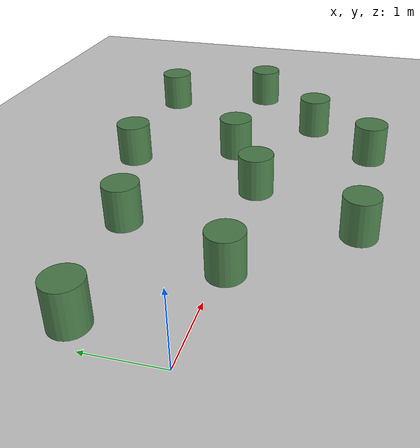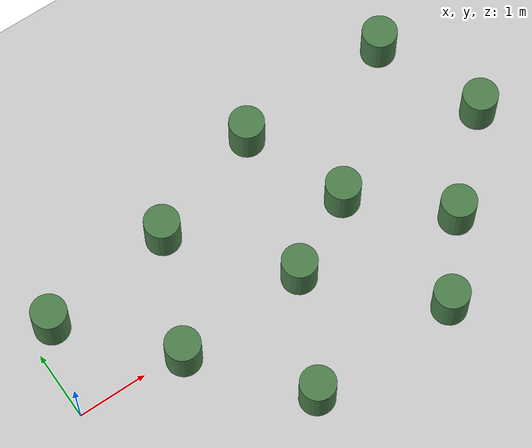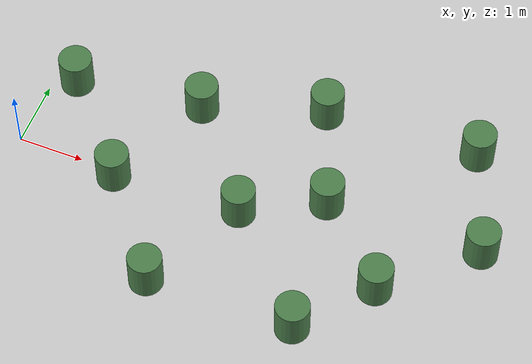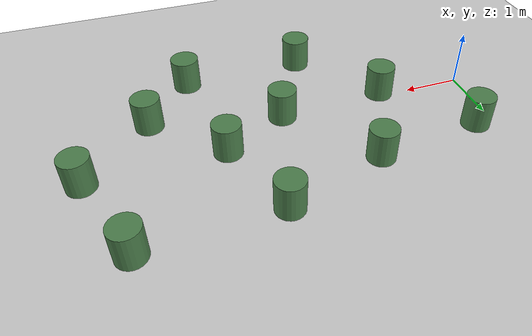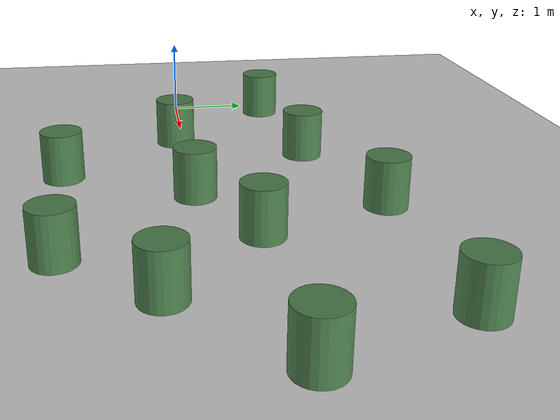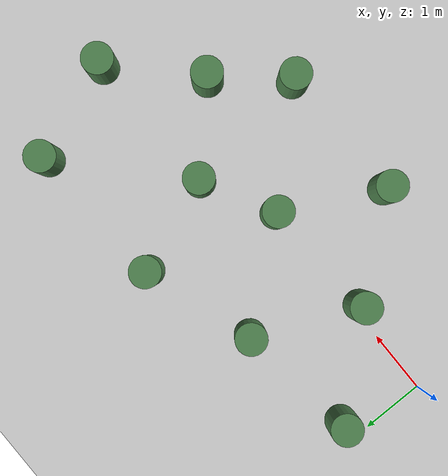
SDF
<sdf version="1.7">
 <world name="default">
  <light name="sun" type="directional">
   <pose>0 0 10 0 -0 0</pose>
   <diffuse>0.8 0.8 0.8 1</diffuse>
   <specular>0.2 0.2 0.2 1</specular>
   <attenuation>
    <range>1000</range>
    <constant>0.9</constant>
    <linear>0.01</linear>
    <quadratic>0.001</quadratic>
   </attenuation>
   <direction>-0.5 0.1 -0.9</direction>
   <spot><inner_angle>0</inner_angle><outer_angle>0</outer_angle><falloff>0</falloff></spot>
  </light>
  <model name="ground_plane">
   <static>1</static>
   <link name="link">
    <collision name="collision">
     <geometry><plane><normal>0 0 1</normal><size>100 100</size></plane></geometry>
     <surface><friction><ode><mu>100</mu><mu2>50</mu2></ode></friction></surface>
    </collision>
    <visual name="visual">
     <cast_shadows>0</cast_shadows>
     <geometry><plane><normal>0 0 1</normal><size>100 100</size></plane></geometry>
     <material>
      <script><uri>file://media/materials/scripts/gazebo.material</uri><name>Gazebo/Grey</name></script>
     </material>
    </visual>
   </link>
  </model>
  <gravity>0 0 -9.8</gravity>
  <magnetic_field>6e-06 2.3e-05 -4.2e-05</magnetic_field>
  <atmosphere type="adiabatic"/>
  <physics type="ode">
   <max_step_size>0.001</max_step_size>
   <real_time_factor>1</real_time_factor>
   <real_time_update_rate>1000</real_time_update_rate>
  </physics>
  <scene><ambient>0.4 0.4 0.4 1</ambient><background>0.7 0.7 0.7 1</background><shadows>1</shadows></scene>
  <spherical_coordinates>
   <surface_model>EARTH_WGS84</surface_model>
   <latitude_deg>0</latitude_deg>
   <longitude_deg>0</longitude_deg>
   <elevation>0</elevation>
   <heading_deg>0</heading_deg>
  </spherical_coordinates>
  <model name="zhu_50_30">
   <link name="link">
    <inertial>
     <mass>1</mass>
     <inertia><ixx>0.145833</ixx><ixy>0</ixy><ixz>0</ixz><iyy>0.145833</iyy><iyz>0</iyz><izz>0.125</izz></inertia>
    </inertial>
    <visual name="visual">
     <geometry><cylinder><radius>0.25</radius><length>0.629034</length></cylinder></geometry>
     <material>
      <script><name>Gazebo/Grey</name><uri>file://media/materials/scripts/gazebo.material</uri></script>
      <shader type="pixel"><normal_map>__default__</normal_map></shader>
      <ambient>0.3 0.5 0.3 1</ambient>
      <diffuse>0.7 0.7 0.7 1</diffuse>
      <specular>0.01 0.01 0.01 1</specular>
      <emissive>0 0 0 1</emissive>
     </material>
    </visual>
    <collision name="collision">
     <geometry><cylinder><radius>0.25</radius><length>0.629034</length></cylinder></geometry>
     <surface>
      <friction>
       <ode><mu>1</mu><mu2>1</mu2><fdir1>0 0 0</fdir1><slip1>0</slip1><slip2>0</slip2></ode>
       <torsional>
        <coefficient>1</coefficient>
        <patch_radius>0</patch_radius>
        <surface_radius>0</surface_radius>
        <use_patch_radius>1</use_patch_radius>
        <ode><slip>0</slip></ode>
       </torsional>
      </friction>
      <bounce><restitution_coefficient>0</restitution_coefficient><threshold>1e+06</threshold></bounce>
      <contact>
       <collide_without_contact>0</collide_without_contact>
       <collide_without_contact_bitmask>1</collide_without_contact_bitmask>
       <collide_bitmask>1</collide_bitmask>
       <ode>
        <soft_cfm>0</soft_cfm>
        <soft_erp>0.2</soft_erp>
        <kp>1e+13</kp>
        <kd>1</kd>
        <max_vel>0.01</max_vel>
        <min_depth>0</min_depth>
       </ode>
       <bullet>
        <split_impulse>1</split_impulse>
        <split_impulse_penetration_threshold>-0.01</split_impulse_penetration_threshold>
        <soft_cfm>0</soft_cfm>
        <soft_erp>0.2</soft_erp>
        <kp>1e+13</kp>
        <kd>1</kd>
       </bullet>
      </contact>
     </surface>
    </collision>
   </link>
   <static>1</static>
   <pose>1.55802 -0.101767 0.290147 0 -0 0</pose>
  </model>
  <model name="zhu_50_30_clone">
   <link name="link">
    <inertial>
     <mass>1</mass>
     <inertia><ixx>0.145833</ixx><ixy>0</ixy><ixz>0</ixz><iyy>0.145833</iyy><iyz>0</iyz><izz>0.125</izz></inertia>
    </inertial>
    <visual name="visual">
     <geometry><cylinder><radius>0.25</radius><length>0.629033</length></cylinder></geometry>
     <material>
      <script><name>Gazebo/Grey</name><uri>file://media/materials/scripts/gazebo.material</uri></script>
      <shader type="pixel"><normal_map>__default__</normal_map></shader>
      <ambient>0.3 0.5 0.3 1</ambient>
      <diffuse>0.7 0.7 0.7 1</diffuse>
      <specular>0.01 0.01 0.01 1</specular>
      <emissive>0 0 0 1</emissive>
     </material>
    </visual>
    <collision name="collision">
     <geometry><cylinder><radius>0.25</radius><length>0.629033</length></cylinder></geometry>
     <surface>
      <friction>
       <ode><mu>1</mu><mu2>1</mu2><fdir1>0 0 0</fdir1><slip1>0</slip1><slip2>0</slip2></ode>
       <torsional>
        <coefficient>1</coefficient>
        <patch_radius>0</patch_radius>
        <surface_radius>0</surface_radius>
        <use_patch_radius>1</use_patch_radius>
        <ode><slip>0</slip></ode>
       </torsional>
      </friction>
      <bounce><restitution_coefficient>0</restitution_coefficient><threshold>1e+06</threshold></bounce>
      <contact>
       <collide_without_contact>0</collide_without_contact>
       <collide_without_contact_bitmask>1</collide_without_contact_bitmask>
       <collide_bitmask>1</collide_bitmask>
       <ode>
        <soft_cfm>0</soft_cfm>
        <soft_erp>0.2</soft_erp>
        <kp>1e+13</kp>
        <kd>1</kd>
        <max_vel>0.01</max_vel>
        <min_depth>0</min_depth>
       </ode>
       <bullet>
        <split_impulse>1</split_impulse>
        <split_impulse_penetration_threshold>-0.01</split_impulse_penetration_threshold>
        <soft_cfm>0</soft_cfm>
        <soft_erp>0.2</soft_erp>
        <kp>1e+13</kp>
        <kd>1</kd>
       </bullet>
      </contact>
     </surface>
    </collision>
   </link>
   <static>1</static>
   <pose>3.48206 -0.000512 0.290147 0 -0 0</pose>
  </model>
  <model name="zhu_50_30_clone_0">
   <link name="link">
    <inertial>
     <mass>1</mass>
     <inertia><ixx>0.145833</ixx><ixy>0</ixy><ixz>0</ixz><iyy>0.145833</iyy><iyz>0</iyz><izz>0.125</izz></inertia>
    </inertial>
    <visual name="visual">
     <geometry><cylinder><radius>0.25</radius><length>0.629033</length></cylinder></geometry>
     <material>
      <script><name>Gazebo/Grey</name><uri>file://media/materials/scripts/gazebo.material</uri></script>
      <shader type="pixel"><normal_map>__default__</normal_map></shader>
      <ambient>0.3 0.5 0.3 1</ambient>
      <diffuse>0.7 0.7 0.7 1</diffuse>
      <specular>0.01 0.01 0.01 1</specular>
      <emissive>0 0 0 1</emissive>
     </material>
    </visual>
    <collision name="collision">
     <geometry><cylinder><radius>0.25</radius><length>0.629033</length></cylinder></geometry>
     <surface>
      <friction>
       <ode><mu>1</mu><mu2>1</mu2><fdir1>0 0 0</fdir1><slip1>0</slip1><slip2>0</slip2></ode>
       <torsional>
        <coefficient>1</coefficient>
        <patch_radius>0</patch_radius>
        <surface_radius>0</surface_radius>
        <use_patch_radius>1</use_patch_radius>
        <ode><slip>0</slip></ode>
       </torsional>
      </friction>
      <bounce><restitution_coefficient>0</restitution_coefficient><threshold>1e+06</threshold></bounce>
      <contact>
       <collide_without_contact>0</collide_without_contact>
       <collide_without_contact_bitmask>1</collide_without_contact_bitmask>
       <collide_bitmask>1</collide_bitmask>
       <ode>
        <soft_cfm>0</soft_cfm>
        <soft_erp>0.2</soft_erp>
        <kp>1e+13</kp>
        <kd>1</kd>
        <max_vel>0.01</max_vel>
        <min_depth>0</min_depth>
       </ode>
       <bullet>
        <split_impulse>1</split_impulse>
        <split_impulse_penetration_threshold>-0.01</split_impulse_penetration_threshold>
        <soft_cfm>0</soft_cfm>
        <soft_erp>0.2</soft_erp>
        <kp>1e+13</kp>
        <kd>1</kd>
       </bullet>
      </contact>
     </surface>
    </collision>
   </link>
   <static>1</static>
   <pose>4.61013 0.598473 0.290147 0 -0 0</pose>
  </model>
  <model name="zhu_50_30_clone_1">
   <link name="link">
    <inertial>
     <mass>1</mass>
     <inertia><ixx>0.145833</ixx><ixy>0</ixy><ixz>0</ixz><iyy>0.145833</iyy><iyz>0</iyz><izz>0.125</izz></inertia>
    </inertial>
    <visual name="visual">
     <geometry><cylinder><radius>0.25</radius><length>0.629033</length></cylinder></geometry>
     <material>
      <script><name>Gazebo/Grey</name><uri>file://media/materials/scripts/gazebo.material</uri></script>
      <shader type="pixel"><normal_map>__default__</normal_map></shader>
      <ambient>0.3 0.5 0.3 1</ambient>
      <diffuse>0.7 0.7 0.7 1</diffuse>
      <specular>0.01 0.01 0.01 1</specular>
      <emissive>0 0 0 1</emissive>
     </material>
    </visual>
    <collision name="collision">
     <geometry><cylinder><radius>0.25</radius><length>0.629033</length></cylinder></geometry>
     <surface>
      <friction>
       <ode><mu>1</mu><mu2>1</mu2><fdir1>0 0 0</fdir1><slip1>0</slip1><slip2>0</slip2></ode>
       <torsional>
        <coefficient>1</coefficient>
        <patch_radius>0</patch_radius>
        <surface_radius>0</surface_radius>
        <use_patch_radius>1</use_patch_radius>
        <ode><slip>0</slip></ode>
       </torsional>
      </friction>
      <bounce><restitution_coefficient>0</restitution_coefficient><threshold>1e+06</threshold></bounce>
      <contact>
       <collide_without_contact>0</collide_without_contact>
       <collide_without_contact_bitmask>1</collide_without_contact_bitmask>
       <collide_bitmask>1</collide_bitmask>
       <ode>
        <soft_cfm>0</soft_cfm>
        <soft_erp>0.2</soft_erp>
        <kp>1e+13</kp>
        <kd>1</kd>
        <max_vel>0.01</max_vel>
        <min_depth>0</min_depth>
       </ode>
       <bullet>
        <split_impulse>1</split_impulse>
        <split_impulse_penetration_threshold>-0.01</split_impulse_penetration_threshold>
        <soft_cfm>0</soft_cfm>
        <soft_erp>0.2</soft_erp>
        <kp>1e+13</kp>
        <kd>1</kd>
       </bullet>
      </contact>
     </surface>
    </collision>
   </link>
   <static>1</static>
   <pose>5.74688 -0.488714 0.290147 0 -0 0</pose>
  </model>
  <model name="zhu_50_30_clone_2">
   <link name="link">
    <inertial>
     <mass>1</mass>
     <inertia><ixx>0.145833</ixx><ixy>0</ixy><ixz>0</ixz><iyy>0.145833</iyy><iyz>0</iyz><izz>0.125</izz></inertia>
    </inertial>
    <visual name="visual">
     <geometry><cylinder><radius>0.25</radius><length>0.629033</length></cylinder></geometry>
     <material>
      <script><name>Gazebo/Grey</name><uri>file://media/materials/scripts/gazebo.material</uri></script>
      <shader type="pixel"><normal_map>__default__</normal_map></shader>
      <ambient>0.3 0.5 0.3 1</ambient>
      <diffuse>0.7 0.7 0.7 1</diffuse>
      <specular>0.01 0.01 0.01 1</specular>
      <emissive>0 0 0 1</emissive>
     </material>
    </visual>
    <collision name="collision">
     <geometry><cylinder><radius>0.25</radius><length>0.629033</length></cylinder></geometry>
     <surface>
      <friction>
       <ode><mu>1</mu><mu2>1</mu2><fdir1>0 0 0</fdir1><slip1>0</slip1><slip2>0</slip2></ode>
       <torsional>
        <coefficient>1</coefficient>
        <patch_radius>0</patch_radius>
        <surface_radius>0</surface_radius>
        <use_patch_radius>1</use_patch_radius>
        <ode><slip>0</slip></ode>
       </torsional>
      </friction>
      <bounce><restitution_coefficient>0</restitution_coefficient><threshold>1e+06</threshold></bounce>
      <contact>
       <collide_without_contact>0</collide_without_contact>
       <collide_without_contact_bitmask>1</collide_without_contact_bitmask>
       <collide_bitmask>1</collide_bitmask>
       <ode>
        <soft_cfm>0</soft_cfm>
        <soft_erp>0.2</soft_erp>
        <kp>1e+13</kp>
        <kd>1</kd>
        <max_vel>0.01</max_vel>
        <min_depth>0</min_depth>
       </ode>
       <bullet>
        <split_impulse>1</split_impulse>
        <split_impulse_penetration_threshold>-0.01</split_impulse_penetration_threshold>
        <soft_cfm>0</soft_cfm>
        <soft_erp>0.2</soft_erp>
        <kp>1e+13</kp>
        <kd>1</kd>
       </bullet>
      </contact>
     </surface>
    </collision>
   </link>
   <static>1</static>
   <pose>6.93401 0.636317 0.290147 0 -0 0</pose>
  </model>
  <model name="zhu_50_30_clone_3">
   <link name="link">
    <inertial>
     <mass>1</mass>
     <inertia><ixx>0.145833</ixx><ixy>0</ixy><ixz>0</ixz><iyy>0.145833</iyy><iyz>0</iyz><izz>0.125</izz></inertia>
    </inertial>
    <visual name="visual">
     <geometry><cylinder><radius>0.25</radius><length>0.629033</length></cylinder></geometry>
     <material>
      <script><name>Gazebo/Grey</name><uri>file://media/materials/scripts/gazebo.material</uri></script>
      <shader type="pixel"><normal_map>__default__</normal_map></shader>
      <ambient>0.3 0.5 0.3 1</ambient>
      <diffuse>0.7 0.7 0.7 1</diffuse>
      <specular>0.01 0.01 0.01 1</specular>
      <emissive>0 0 0 1</emissive>
     </material>
    </visual>
    <collision name="collision">
     <geometry><cylinder><radius>0.25</radius><length>0.629033</length></cylinder></geometry>
     <surface>
      <friction>
       <ode><mu>1</mu><mu2>1</mu2><fdir1>0 0 0</fdir1><slip1>0</slip1><slip2>0</slip2></ode>
       <torsional>
        <coefficient>1</coefficient>
        <patch_radius>0</patch_radius>
        <surface_radius>0</surface_radius>
        <use_patch_radius>1</use_patch_radius>
        <ode><slip>0</slip></ode>
       </torsional>
      </friction>
      <bounce><restitution_coefficient>0</restitution_coefficient><threshold>1e+06</threshold></bounce>
      <contact>
       <collide_without_contact>0</collide_without_contact>
       <collide_without_contact_bitmask>1</collide_without_contact_bitmask>
       <collide_bitmask>1</collide_bitmask>
       <ode>
        <soft_cfm>0</soft_cfm>
        <soft_erp>0.2</soft_erp>
        <kp>1e+13</kp>
        <kd>1</kd>
        <max_vel>0.01</max_vel>
        <min_depth>0</min_depth>
       </ode>
       <bullet>
        <split_impulse>1</split_impulse>
        <split_impulse_penetration_threshold>-0.01</split_impulse_penetration_threshold>
        <soft_cfm>0</soft_cfm>
        <soft_erp>0.2</soft_erp>
        <kp>1e+13</kp>
        <kd>1</kd>
       </bullet>
      </contact>
     </surface>
    </collision>
   </link>
   <static>1</static>
   <pose>2.27943 1.50554 0.290147 0 -0 0</pose>
  </model>
  <model name="zhu_50_30_clone_4">
   <link name="link">
    <inertial>
     <mass>1</mass>
     <inertia><ixx>0.145833</ixx><ixy>0</ixy><ixz>0</ixz><iyy>0.145833</iyy><iyz>0</iyz><izz>0.125</izz></inertia>
    </inertial>
    <visual name="visual">
     <geometry><cylinder><radius>0.25</radius><length>0.629033</length></cylinder></geometry>
     <material>
      <script><name>Gazebo/Grey</name><uri>file://media/materials/scripts/gazebo.material</uri></script>
      <shader type="pixel"><normal_map>__default__</normal_map></shader>
      <ambient>0.3 0.5 0.3 1</ambient>
      <diffuse>0.7 0.7 0.7 1</diffuse>
      <specular>0.01 0.01 0.01 1</specular>
      <emissive>0 0 0 1</emissive>
     </material>
    </visual>
    <collision name="collision">
     <geometry><cylinder><radius>0.25</radius><length>0.629033</length></cylinder></geometry>
     <surface>
      <friction>
       <ode><mu>1</mu><mu2>1</mu2><fdir1>0 0 0</fdir1><slip1>0</slip1><slip2>0</slip2></ode>
       <torsional>
        <coefficient>1</coefficient>
        <patch_radius>0</patch_radius>
        <surface_radius>0</surface_radius>
        <use_patch_radius>1</use_patch_radius>
        <ode><slip>0</slip></ode>
       </torsional>
      </friction>
      <bounce><restitution_coefficient>0</restitution_coefficient><threshold>1e+06</threshold></bounce>
      <contact>
       <collide_without_contact>0</collide_without_contact>
       <collide_without_contact_bitmask>1</collide_without_contact_bitmask>
       <collide_bitmask>1</collide_bitmask>
       <ode>
        <soft_cfm>0</soft_cfm>
        <soft_erp>0.2</soft_erp>
        <kp>1e+13</kp>
        <kd>1</kd>
        <max_vel>0.01</max_vel>
        <min_depth>0</min_depth>
       </ode>
       <bullet>
        <split_impulse>1</split_impulse>
        <split_impulse_penetration_threshold>-0.01</split_impulse_penetration_threshold>
        <soft_cfm>0</soft_cfm>
        <soft_erp>0.2</soft_erp>
        <kp>1e+13</kp>
        <kd>1</kd>
       </bullet>
      </contact>
     </surface>
    </collision>
   </link>
   <static>1</static>
   <pose>0.349032 1.26006 0.290147 0 -0 0</pose>
  </model>
  <model name="zhu_50_30_clone_5">
   <link name="link">
    <inertial>
     <mass>1</mass>
     <inertia><ixx>0.145833</ixx><ixy>0</ixy><ixz>0</ixz><iyy>0.145833</iyy><iyz>0</iyz><izz>0.125</izz></inertia>
    </inertial>
    <visual name="visual">
     <geometry><cylinder><radius>0.25</radius><length>0.629033</length></cylinder></geometry>
     <material>
      <script><name>Gazebo/Grey</name><uri>file://media/materials/scripts/gazebo.material</uri></script>
      <shader type="pixel"><normal_map>__default__</normal_map></shader>
      <ambient>0.3 0.5 0.3 1</ambient>
      <diffuse>0.7 0.7 0.7 1</diffuse>
      <specular>0.01 0.01 0.01 1</specular>
      <emissive>0 0 0 1</emissive>
     </material>
    </visual>
    <collision name="collision">
     <geometry><cylinder><radius>0.25</radius><length>0.629033</length></cylinder></geometry>
     <surface>
      <friction>
       <ode><mu>1</mu><mu2>1</mu2><fdir1>0 0 0</fdir1><slip1>0</slip1><slip2>0</slip2></ode>
       <torsional>
        <coefficient>1</coefficient>
        <patch_radius>0</patch_radius>
        <surface_radius>0</surface_radius>
        <use_patch_radius>1</use_patch_radius>
        <ode><slip>0</slip></ode>
       </torsional>
      </friction>
      <bounce><restitution_coefficient>0</restitution_coefficient><threshold>1e+06</threshold></bounce>
      <contact>
       <collide_without_contact>0</collide_without_contact>
       <collide_without_contact_bitmask>1</collide_without_contact_bitmask>
       <collide_bitmask>1</collide_bitmask>
       <ode>
        <soft_cfm>0</soft_cfm>
        <soft_erp>0.2</soft_erp>
        <kp>1e+13</kp>
        <kd>1</kd>
        <max_vel>0.01</max_vel>
        <min_depth>0</min_depth>
       </ode>
       <bullet>
        <split_impulse>1</split_impulse>
        <split_impulse_penetration_threshold>-0.01</split_impulse_penetration_threshold>
        <soft_cfm>0</soft_cfm>
        <soft_erp>0.2</soft_erp>
        <kp>1e+13</kp>
        <kd>1</kd>
       </bullet>
      </contact>
     </surface>
    </collision>
   </link>
   <static>1</static>
   <pose>2.70953 -1.54123 0.290147 0 -0 0</pose>
  </model>
  <model name="zhu_50_30_clone_6">
   <link name="link">
    <inertial>
     <mass>1</mass>
     <inertia><ixx>0.145833</ixx><ixy>0</ixy><ixz>0</ixz><iyy>0.145833</iyy><iyz>0</iyz><izz>0.125</izz></inertia>
    </inertial>
    <visual name="visual">
     <geometry><cylinder><radius>0.25</radius><length>0.629033</length></cylinder></geometry>
     <material>
      <script><name>Gazebo/Grey</name><uri>file://media/materials/scripts/gazebo.material</uri></script>
      <shader type="pixel"><normal_map>__default__</normal_map></shader>
      <ambient>0.3 0.5 0.3 1</ambient>
      <diffuse>0.7 0.7 0.7 1</diffuse>
      <specular>0.01 0.01 0.01 1</specular>
      <emissive>0 0 0 1</emissive>
     </material>
    </visual>
    <collision name="collision">
     <geometry><cylinder><radius>0.25</radius><length>0.629033</length></cylinder></geometry>
     <surface>
      <friction>
       <ode><mu>1</mu><mu2>1</mu2><fdir1>0 0 0</fdir1><slip1>0</slip1><slip2>0</slip2></ode>
       <torsional>
        <coefficient>1</coefficient>
        <patch_radius>0</patch_radius>
        <surface_radius>0</surface_radius>
        <use_patch_radius>1</use_patch_radius>
        <ode><slip>0</slip></ode>
       </torsional>
      </friction>
      <bounce><restitution_coefficient>0</restitution_coefficient><threshold>1e+06</threshold></bounce>
      <contact>
       <collide_without_contact>0</collide_without_contact>
       <collide_without_contact_bitmask>1</collide_without_contact_bitmask>
       <collide_bitmask>1</collide_bitmask>
       <ode>
        <soft_cfm>0</soft_cfm>
        <soft_erp>0.2</soft_erp>
        <kp>1e+13</kp>
        <kd>1</kd>
        <max_vel>0.01</max_vel>
        <min_depth>0</min_depth>
       </ode>
       <bullet>
        <split_impulse>1</split_impulse>
        <split_impulse_penetration_threshold>-0.01</split_impulse_penetration_threshold>
        <soft_cfm>0</soft_cfm>
        <soft_erp>0.2</soft_erp>
        <kp>1e+13</kp>
        <kd>1</kd>
       </bullet>
      </contact>
     </surface>
    </collision>
   </link>
   <static>1</static>
   <pose>4.89595 -1.49272 0.290147 0 -0 0</pose>
  </model>
  <model name="zhu_50_30_clone_7">
   <link name="link">
    <inertial>
     <mass>1</mass>
     <inertia><ixx>0.145833</ixx><ixy>0</ixy><ixz>0</ixz><iyy>0.145833</iyy><iyz>0</iyz><izz>0.125</izz></inertia>
    </inertial>
    <visual name="visual">
     <geometry><cylinder><radius>0.25</radius><length>0.629033</length></cylinder></geometry>
     <material>
      <script><name>Gazebo/Grey</name><uri>file://media/materials/scripts/gazebo.material</uri></script>
      <shader type="pixel"><normal_map>__default__</normal_map></shader>
      <ambient>0.3 0.5 0.3 1</ambient>
      <diffuse>0.7 0.7 0.7 1</diffuse>
      <specular>0.01 0.01 0.01 1</specular>
      <emissive>0 0 0 1</emissive>
     </material>
    </visual>
    <collision name="collision">
     <geometry><cylinder><radius>0.25</radius><length>0.629033</length></cylinder></geometry>
     <surface>
      <friction>
       <ode><mu>1</mu><mu2>1</mu2><fdir1>0 0 0</fdir1><slip1>0</slip1><slip2>0</slip2></ode>
       <torsional>
        <coefficient>1</coefficient>
        <patch_radius>0</patch_radius>
        <surface_radius>0</surface_radius>
        <use_patch_radius>1</use_patch_radius>
        <ode><slip>0</slip></ode>
       </torsional>
      </friction>
      <bounce><restitution_coefficient>0</restitution_coefficient><threshold>1e+06</threshold></bounce>
      <contact>
       <collide_without_contact>0</collide_without_contact>
       <collide_without_contact_bitmask>1</collide_without_contact_bitmask>
       <collide_bitmask>1</collide_bitmask>
       <ode>
        <soft_cfm>0</soft_cfm>
        <soft_erp>0.2</soft_erp>
        <kp>1e+13</kp>
        <kd>1</kd>
        <max_vel>0.01</max_vel>
        <min_depth>0</min_depth>
       </ode>
       <bullet>
        <split_impulse>1</split_impulse>
        <split_impulse_penetration_threshold>-0.01</split_impulse_penetration_threshold>
        <soft_cfm>0</soft_cfm>
        <soft_erp>0.2</soft_erp>
        <kp>1e+13</kp>
        <kd>1</kd>
       </bullet>
      </contact>
     </surface>
    </collision>
   </link>
   <static>1</static>
   <pose>4.04275 2.08942 0.290147 0 -0 0</pose>
  </model>
  <model name="zhu_50_30_clone_8">
   <link name="link">
    <inertial>
     <mass>1</mass>
     <inertia><ixx>0.145833</ixx><ixy>0</ixy><ixz>0</ixz><iyy>0.145833</iyy><iyz>0</iyz><izz>0.125</izz></inertia>
    </inertial>
    <visual name="visual">
     <geometry><cylinder><radius>0.25</radius><length>0.629033</length></cylinder></geometry>
     <material>
      <script><name>Gazebo/Grey</name><uri>file://media/materials/scripts/gazebo.material</uri></script>
      <shader type="pixel"><normal_map>__default__</normal_map></shader>
      <ambient>0.3 0.5 0.3 1</ambient>
      <diffuse>0.7 0.7 0.7 1</diffuse>
      <specular>0.01 0.01 0.01 1</specular>
      <emissive>0 0 0 1</emissive>
     </material>
    </visual>
    <collision name="collision">
     <geometry><cylinder><radius>0.25</radius><length>0.629033</length></cylinder></geometry>
     <surface>
      <friction>
       <ode><mu>1</mu><mu2>1</mu2><fdir1>0 0 0</fdir1><slip1>0</slip1><slip2>0</slip2></ode>
       <torsional>
        <coefficient>1</coefficient>
        <patch_radius>0</patch_radius>
        <surface_radius>0</surface_radius>
        <use_patch_radius>1</use_patch_radius>
        <ode><slip>0</slip></ode>
       </torsional>
      </friction>
      <bounce><restitution_coefficient>0</restitution_coefficient><threshold>1e+06</threshold></bounce>
      <contact>
       <collide_without_contact>0</collide_without_contact>
       <collide_without_contact_bitmask>1</collide_without_contact_bitmask>
       <collide_bitmask>1</collide_bitmask>
       <ode>
        <soft_cfm>0</soft_cfm>
        <soft_erp>0.2</soft_erp>
        <kp>1e+13</kp>
        <kd>1</kd>
        <max_vel>0.01</max_vel>
        <min_depth>0</min_depth>
       </ode>
       <bullet>
        <split_impulse>1</split_impulse>
        <split_impulse_penetration_threshold>-0.01</split_impulse_penetration_threshold>
        <soft_cfm>0</soft_cfm>
        <soft_erp>0.2</soft_erp>
        <kp>1e+13</kp>
        <kd>1</kd>
       </bullet>
      </contact>
     </surface>
    </collision>
   </link>
   <static>1</static>
   <pose>6.35336 2.20785 0.290147 0 -0 0</pose>
  </model>
 </world>
</sdf>
